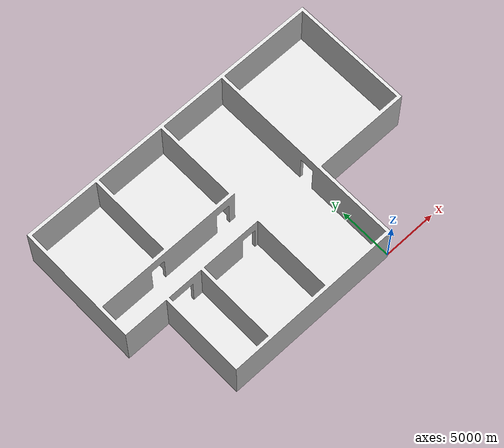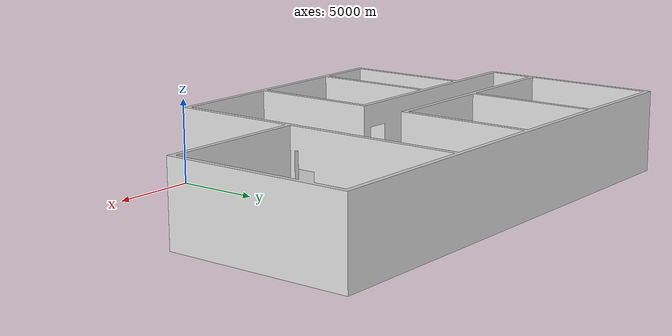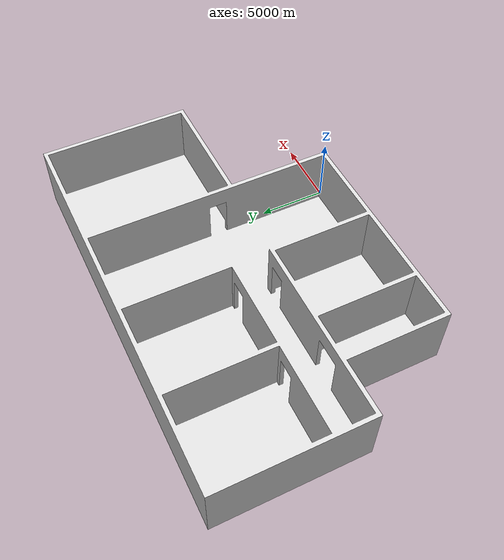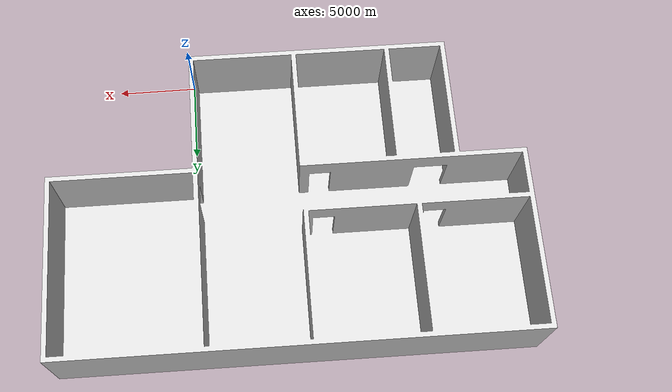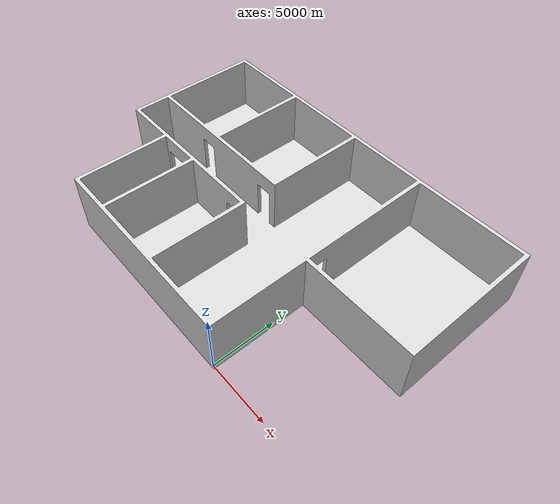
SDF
<sdf version="1.7">
 <world name="default">
  <scene><ambient>1 1 1 1</ambient><background>0 0 0 1</background><shadows>0</shadows><grid>0</grid></scene>
  <light name="sun" type="directional">
   <pose>0 0 10 0 -0 0</pose>
   <diffuse>0.8 0.8 0.8 1</diffuse>
   <specular>0.2 0.2 0.2 1</specular>
   <attenuation>
    <range>1000</range>
    <constant>0.9</constant>
    <linear>0.01</linear>
    <quadratic>0.001</quadratic>
   </attenuation>
   <direction>-0.5 0.1 -0.9</direction>
   <spot><inner_angle>0</inner_angle><outer_angle>0</outer_angle><falloff>0</falloff></spot>
  </light>
  <model name="apt">
   <pose>0.906374 -1.48076 1.66182 0 -0 1.57</pose>
   <static>1</static>
   <link name="body">
    <pose>1 1 0 0 -0 0</pose>
    <visual name="visual">
     <geometry><mesh><uri>model://apt/meshes/apt.dae</uri><scale>1.5 1.5 1.5</scale></mesh></geometry>
    </visual>
    <collision name="collision">
     <geometry><mesh><uri>model://apt/meshes/apt.dae</uri><scale>1.5 1.5 1.5</scale></mesh></geometry>
    </collision>
   </link>
  </model>
  <model name="ground_plane_small">
   <static>1</static>
   <link name="link">
    <collision name="collision">
     <pose>0 0 -0.525 0 -0 0</pose>
     <geometry><box><size>1 1 0.05</size></box></geometry>
     <surface><friction><ode><mu>100</mu><mu2>50</mu2></ode></friction></surface>
    </collision>
   </link>
  </model>
  <gravity>0 0 -9.8</gravity>
  <magnetic_field>6e-06 2.3e-05 -4.2e-05</magnetic_field>
  <atmosphere type="adiabatic"/>
  <physics type="ode">
   <max_step_size>0.001</max_step_size>
   <real_time_factor>1</real_time_factor>
   <real_time_update_rate>1000</real_time_update_rate>
  </physics>
  <spherical_coordinates>
   <surface_model>EARTH_WGS84</surface_model>
   <latitude_deg>0</latitude_deg>
   <longitude_deg>0</longitude_deg>
   <elevation>0</elevation>
   <heading_deg>0</heading_deg>
  </spherical_coordinates>
 </world>
</sdf>
